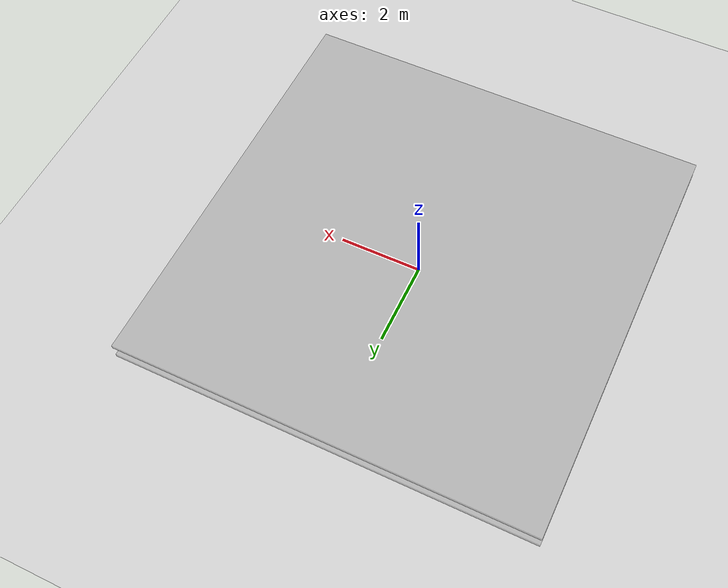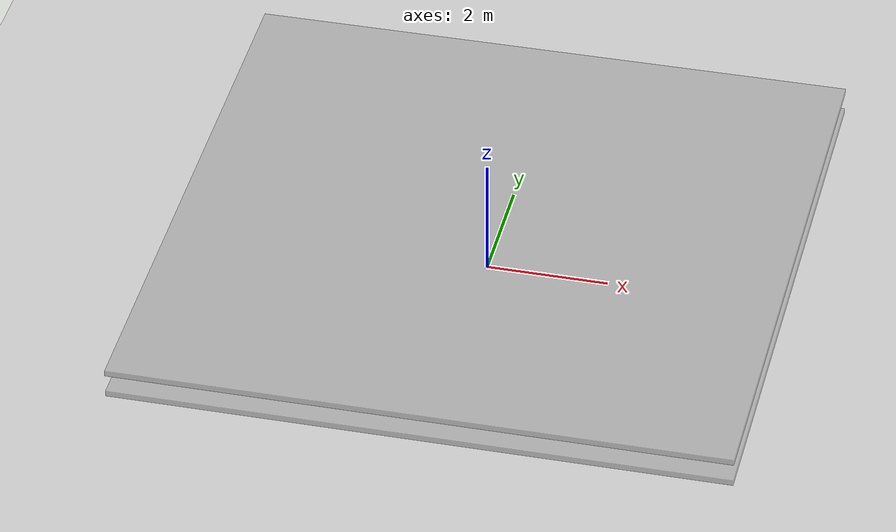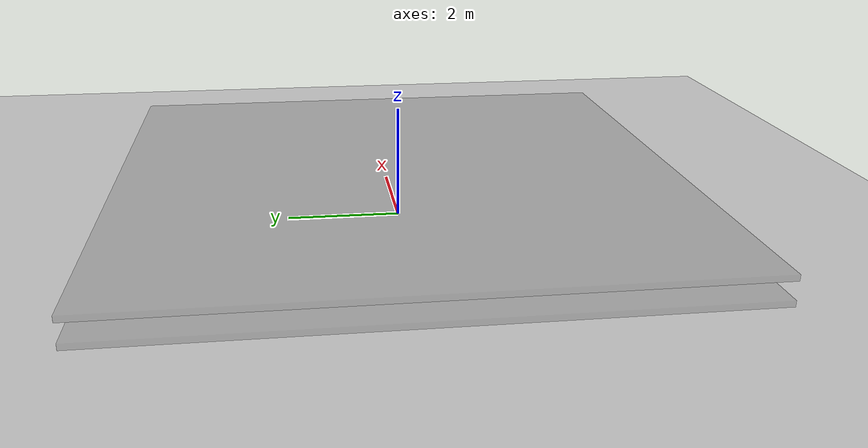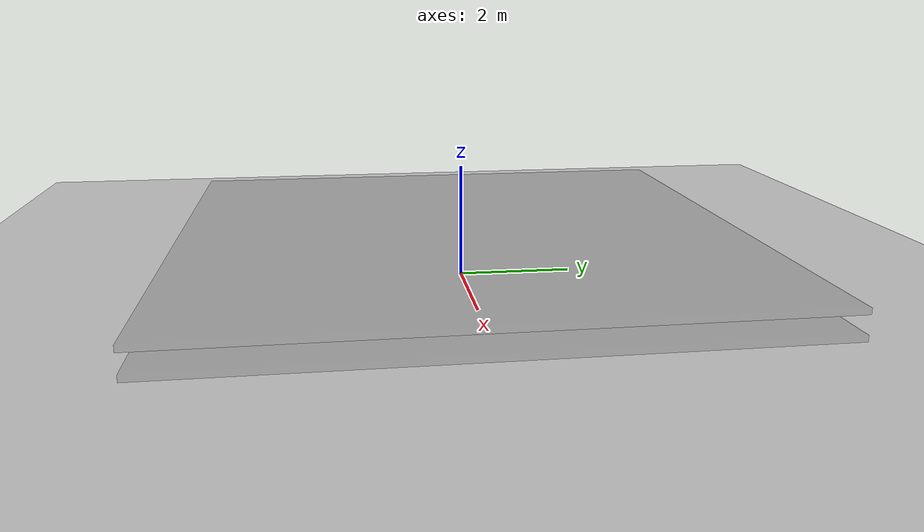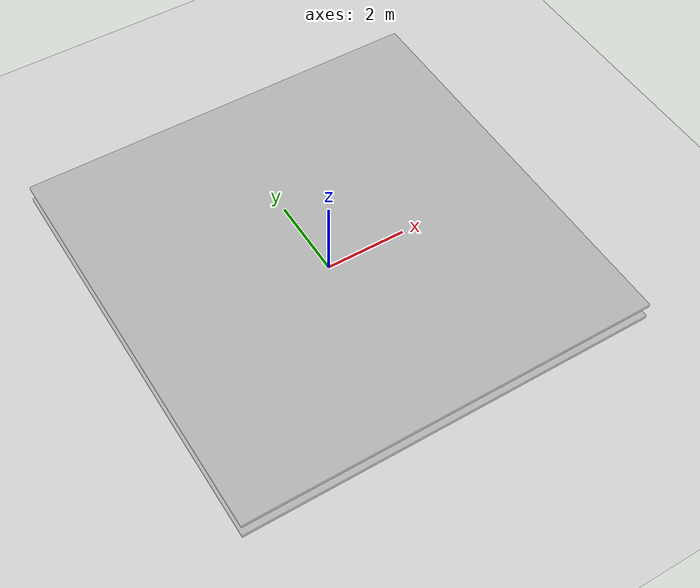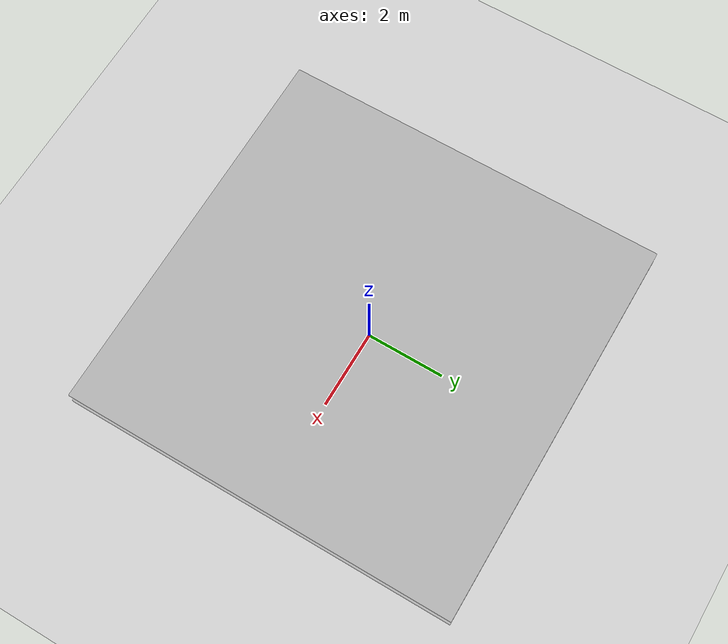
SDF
<sdf version='1.4'>
  <world name='default'>
    <!-- include sun and ground plane -->
    <include><uri>model://sun</uri></include>
    <include><uri>model://ground_plane</uri></include>

    <model name="sensor_box">
      <static>true</static>
      <link name="link">
        <pose>0 0 0.40  0 0 0</pose>
        <collision name="collision">
          <geometry>
            <box>
              <size>4 4 0.001</size>
            </box>
          </geometry>
        </collision>
        <visual name="visual">
          <geometry>
            <box>
              <size>10 10 0.1</size>
            </box>
          </geometry>
          <material><script>
            <uri>file://media/materials/scripts/gazebo.material</uri>
            <name>Gazebo/GreyTransparent</name>
          </script></material>
        </visual>
        <sensor name="box_contact" type="contact">
          <always_on>true</always_on>
          <update_rate>1000</update_rate>
          <contact>
            <collision>collision</collision>
          </contact>
        </sensor>
      </link>
    </model>

    <model name="sensor_box2">
      <static>true</static>
      <link name="link2">
        <pose>0 0 0.80  0 0 0</pose>
        <collision name="collision2">
          <geometry>
            <box>
              <size>4 4 0.001</size>
            </box>
          </geometry>
        </collision>
        <visual name="visual2">
          <geometry>
            <box>
              <size>10 10 0.1</size>
            </box>
          </geometry>
          <material><script>
            <uri>file://media/materials/scripts/gazebo.material</uri>
            <name>Gazebo/GreyTransparent</name>
          </script></material>
        </visual>
        <sensor name="box_contact2" type="contact2">
          <always_on>true</always_on>
          <update_rate>1000</update_rate>
          <contact>
            <collision>collision</collision>
          </contact>
        </sensor>
      </link>
    </model>

  </world>
</sdf>
